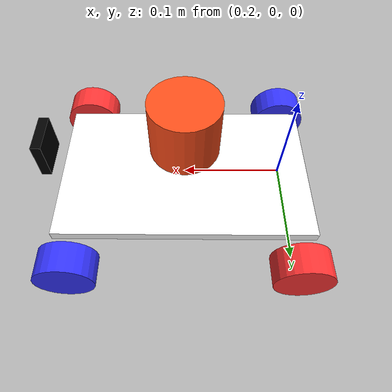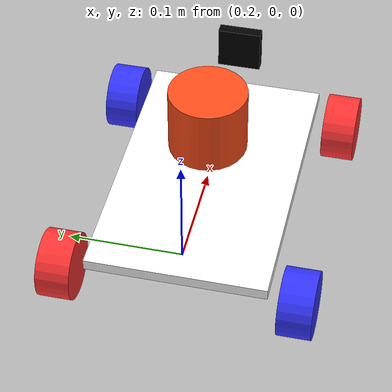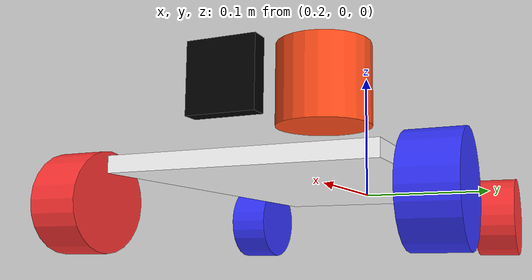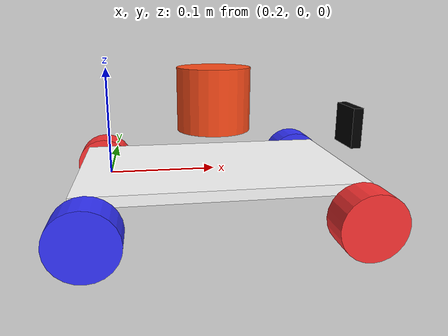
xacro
<?xml version="1.0"?>
<robot xmlns:xacro="http://www.ros.org/wiki/xacro" name="robot">

    <xacro:arg name="use_ros2_control" default="true"/>

    <xacro:include filename="robot_core.xacro"/>
    <xacro:if value="$(arg use_ros2_control)">
        <xacro:include filename="ros2_control.xacro"/>
    </xacro:if>
    <xacro:unless value="$(arg use_ros2_control)">
        <xacro:include filename="gazebo_control.xacro"/>
    </xacro:unless>

    <xacro:include filename="lidar.xacro"/>
    <xacro:include filename="camera.xacro"/>

</robot>

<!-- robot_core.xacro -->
<robot xmlns:xacro="http://www.ros.org/wiki/xacro">

    <xacro:include filename="inertial_macros.xacro"/>

    <material name="white">
        <color rgba="1 1 1 1"/>
    </material>
    <material name="orange">
        <color rgba="1 0.3 0.1 1"/>
    </material>
    <material name="blue">
        <color rgba="0.2 0.2 1 1"/>
    </material>
    <material name="red">
        <color rgba="1 0.2 0.2 1"/>
    </material>
    <material name="black">
        <color rgba="0 0 0 1"/>
    </material>

    <xacro:property name="chassis_length" value="0.26"/>
    <xacro:property name="chassis_width" value="0.16"/>
    <xacro:property name="chassis_height" value="0.01"/>

    <xacro:property name="wheel_radius" value="0.03"/>
    <xacro:property name="wheel_length" value="0.03"/>
    <xacro:property name="wheel_offset_x" value="0.115"/>
    <xacro:property name="wheel_offset_y" value="0.105"/>
    <xacro:property name="wheel_offset_z" value="0.02"/>
    <xacro:property name="wheel_mass" value="0.01"/>

    <link name="base_link"></link>

    <joint name="chassis_joint" type="fixed">
        <parent link="base_link"/>
        <child link="chassis_link"/>
        <origin xyz="0.3 0.0 0.0"/>
    </joint>
    <link name="chassis_link">
        <visual>
            <origin xyz="0.0 0.0 0.0"/>
            <geometry>
                <box size="${chassis_length} ${chassis_width} ${chassis_height}"/>
            </geometry>
            <material name="white"/>
        </visual>
        <collision>
            <origin xyz="0.0 0.0 0.0"/>
            <geometry>
                <box size="${chassis_length} ${chassis_width} ${chassis_height}"/>
            </geometry>
        </collision>
        <xacro:inertial_box mass="0.5" x="${chassis_length}" y="${chassis_width}" z="${chassis_height}">
            <origin xyz="0.0 0.0 0.0" rpy="0.0 0.0 0.0"/>
        </xacro:inertial_box>
    </link>
    <gazebo reference="chassis_link">
        <material>Gazebo/White</material>
    </gazebo>

    <!-- LEFT FORWARD WHEEL -->
    <joint name="left_forward_wheel_joint" type="continuous">
        <parent link="chassis_link"/>
        <child link="left_forward_wheel_link"/>
        <origin xyz="${wheel_offset_x} ${wheel_offset_y} ${-wheel_offset_z}" rpy="-${pi/2} 0.0 0.0"/>
        <axis xyz="0.0 0.0 1"/>
    </joint>
    <link name="left_forward_wheel_link">
        <visual>
            <geometry>
                <cylinder radius="${wheel_radius}" length="${wheel_length}"/>
            </geometry>
            <material name="blue"/>
        </visual>
        <collision>
            <geometry>
                <sphere radius="${wheel_radius}" length="${wheel_length}"/>
            </geometry>
        </collision>
        <xacro:inertial_cylinder mass="${wheel_mass}" length="${wheel_length}" radius="${wheel_radius}">
            <origin xyz="0.0 0.0 0.0" rpy="0.0 0.0 0.0"/>
        </xacro:inertial_cylinder>
    </link>
    <gazebo reference="left_forward_wheel_link">
        <material>Gazebo/Blue</material>
    </gazebo>

    <!-- RIGHT FORWARD WHEEL -->
    <joint name="right_forward_wheel_joint" type="continuous">
        <parent link="chassis_link"/>
        <child link="right_forward_wheel_link"/>
        <origin xyz="${wheel_offset_x} ${-wheel_offset_y} ${-wheel_offset_z}" rpy="${pi/2} 0.0 0.0"/>
        <axis xyz="0.0 0.0 -1"/>
    </joint>
    <link name="right_forward_wheel_link">
        <visual>
            <geometry>
                <cylinder radius="${wheel_radius}" length="${wheel_length}"/>
            </geometry>
            <material name="red"/>
        </visual>
        <collision>
            <geometry>
                <sphere radius="${wheel_radius}" length="${wheel_length}"/>
            </geometry>
        </collision>
        <xacro:inertial_cylinder mass="${wheel_mass}" length="${wheel_length}" radius="${wheel_radius}">
            <origin xyz="0.0 0.0 0.0" rpy="0.0 0.0 0.0"/>
        </xacro:inertial_cylinder>
    </link>
    <gazebo reference="right_forward_wheel_link">
        <material>Gazebo/Red</material>
    </gazebo>

    <!-- LEFT REAR WHEEL -->
    <joint name="left_rear_wheel_joint" type="continuous">
        <parent link="chassis_link"/>
        <child link="left_rear_wheel_link"/>
        <origin xyz="${-wheel_offset_x} ${wheel_offset_y} ${-wheel_offset_z}" rpy="-${pi/2} 0.0 0.0"/>
        <axis xyz="0.0 0.0 1"/>
    </joint>
    <link name="left_rear_wheel_link">
        <visual>
            <geometry>
                <cylinder radius="${wheel_radius}" length="${wheel_length}"/>
            </geometry>
            <material name="red"/>
        </visual>
        <collision>
            <geometry>
                <sphere radius="${wheel_radius}" length="${wheel_length}"/>
            </geometry>
        </collision>
        <xacro:inertial_cylinder mass="${wheel_mass}" length="${wheel_length}" radius="${wheel_radius}">
            <origin xyz="0.0 0.0 0.0" rpy="0.0 0.0 0.0"/>
        </xacro:inertial_cylinder>
    </link>
    <gazebo reference="left_rear_wheel_link">
        <material>Gazebo/Red</material>
    </gazebo>

    <!-- RIGHT REAR WHEEL -->
    <joint name="right_rear_wheel_joint" type="continuous">
        <parent link="chassis_link"/>
        <child link="right_rear_wheel_link"/>
        <origin xyz="${-wheel_offset_x} ${-wheel_offset_y} ${-wheel_offset_z}" rpy="${pi/2} 0.0 0.0"/>
        <axis xyz="0.0 0.0 -1"/>
    </joint>
    <link name="right_rear_wheel_link">
        <visual>
            <geometry>
                <cylinder radius="${wheel_radius}" length="${wheel_length}"/>
            </geometry>
            <material name="blue"/>
        </visual>
        <collision>
            <geometry>
                <sphere radius="${wheel_radius}" length="${wheel_length}"/>
            </geometry>
        </collision>
        <xacro:inertial_cylinder mass="${wheel_mass}" length="${wheel_length}" radius="${wheel_radius}">
            <origin xyz="0.0 0.0 0.0" rpy="0.0 0.0 0.0"/>
        </xacro:inertial_cylinder>
    </link>
    <gazebo reference="right_rear_wheel_link">
        <material>Gazebo/Blue</material>
    </gazebo>

</robot>

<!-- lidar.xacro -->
<robot xmlns:xacro="http://www.ros.org/wiki/xacro">

    <joint name="laser_joint" type="fixed">
        <parent link="chassis_link"/>
        <child link="laser_frame"/>
        <origin xyz="0.0 0.0 0.07" rpy="0.0 0.0 0.0"/>
    </joint>

    <link name="laser_frame">
        <visual>
            <geometry>
                <cylinder radius="0.035" length="0.06"/>
            </geometry>
            <material name="orange"/>
        </visual>
        <collision>
            <geometry>
                <cylinder radius="0.035" length="0.06"/>
            </geometry>
        </collision>
        <xacro:inertial_cylinder mass="0.3" length="0.04" radius="0.05">
            <origin xyz="0.0 0.0 0.0" rpy="0.0 0.0 0.0"/>
        </xacro:inertial_cylinder>
    </link>

    <gazebo reference="laser_frame">
        <material>Gazebo/Orange</material>
        <sensor name="laser" type="ray">
            <pose> 0 0 0 0 0 0 </pose>
            <visualize>false</visualize>
            <update_rate>10</update_rate>
            <ray>
                <scan>
                    <horizontal>
                        <samples>360</samples>
                        <min_angle>-3.14</min_angle>
                        <max_angle>3.14</max_angle>
                    </horizontal>
                </scan>
                <range>
                    <min>0.3</min>
                    <max>12</max>
                </range>
            </ray>
            <plugin name="laser_controller" filename="libgazebo_ros_ray_sensor.so">
                <ros>
                    <argument>~/out:=scan</argument>
                </ros>
                <output_type>sensor_msgs/LaserScan</output_type>
                <frame_name>laser_frame</frame_name>
            </plugin>
        </sensor>
    </gazebo>

</robot>

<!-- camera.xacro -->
<robot xmlns:xacro="http://www.ros.org/wiki/xacro">

    <joint name="camera_joint" type="fixed">
        <parent link="chassis_link"/>
        <child link="camera_link"/>
        <origin xyz="0.14 0.0 0.04" rpy="0.0 0.0 0.0"/>
    </joint>
    <link name="camera_link">
        <visual>
            <geometry>
            <box size="0.01 0.04 0.04"/>
            </geometry>
            <material name="black"/>
        </visual>
        <collision>
            <geometry>
                <box size="0.01 0.04 0.04"/>
            </geometry>
        </collision>
        <xacro:inertial_box mass="0.1" x="0.04" y="0.04" z="0.01">
            <origin xyz="-0.1 00. 0.04" rpy="0.0 0.0 0.0"/>
        </xacro:inertial_box>
    </link>

    <joint name="camera_joint_optical" type="fixed">
        <parent link="camera_link"/>
        <child link="camera_link_optical"/>
        <origin xyz="0.0 0.0 0.0" rpy="${-pi/2} 0.0 ${-pi/2}"/>
    </joint>
    <link name="camera_link_optical">
    </link>

    <gazebo reference="camera_link">
        <material>Gazebo/Black</material>

        <sensor name="camera" type="camera">
            <pose> 0 0 0 0 0 0 </pose>
            <visualize>true</visualize>
            <update_rate>10</update_rate>
            <camera>
                <horizontal_fov>1.089</horizontal_fov>
                <image>
                    <format>R8G8B8</format>
                    <width>640</width>
                    <height>480</height>
                </image>
                <clip>
                    <near>0.05</near>
                    <far>8.0</far>
                </clip>
            </camera>
            <plugin name="camera_controller" filename="libgazebo_ros_camera.so">
                <frame_name>camera_link_optical</frame_name>
            </plugin>
        </sensor>
    </gazebo>

</robot>
